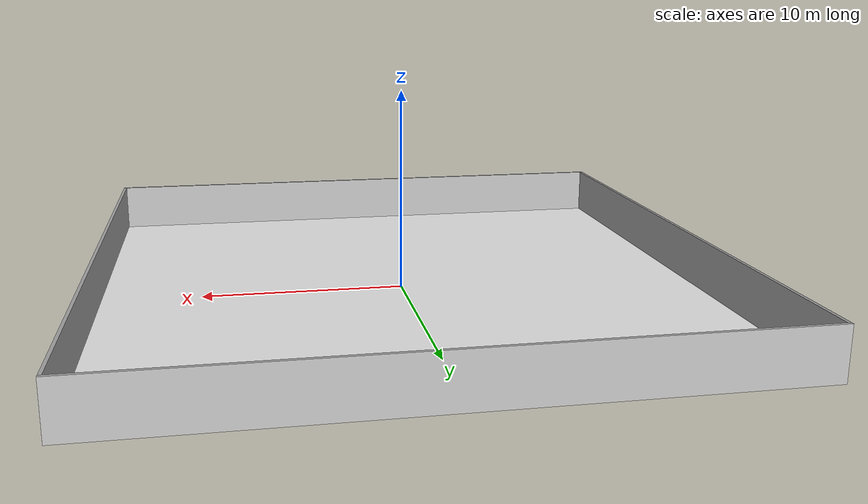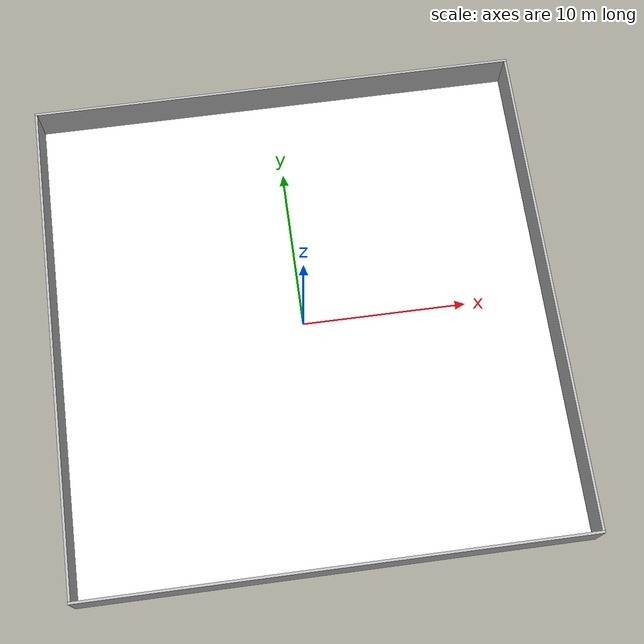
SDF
<?xml version="1.0"?>
<sdf version="1.6">
<model name='warehouse'>
  <static>true</static>
  <pose frame=''>0 0 0 0 -0 0</pose>

    <link name='Wall_1'>
      <collision name='Wall_1_Collision'>
        <geometry>
          <box>
            <size>30 .15239 2.5</size>
          </box>
        </geometry>
        <pose frame=''>0 0 1.25 0 -0 0</pose>
      </collision>
      <visual name='Wall_1_Visual'>
        <pose frame=''>0 0 1.25 0 -0 0</pose>
        <geometry>
          <box>
            <size>30 .15239 2.5</size>
          </box>
        </geometry>
        <material>
          <script>
            <uri>model://warehouse/materials/scripts</uri>
            <uri>model://warehouse/materials/textures</uri>
            <name>RepeatedTexture</name>
          </script>
        </material>
      </visual>
      <pose frame=''>0 15.06 0 0 -0 0</pose>
    </link>

    <link name='Wall_2'>
      <collision name='Wall_2_Collision'>
        <geometry>
          <box>
            <size>30 .15239 2.5</size>
          </box>
        </geometry>
        <pose frame=''>0 0 1.25 0 -0 0</pose>
      </collision>
      <visual name='Wall_2_Visual'>
        <pose frame=''>0 0 1.25 0 -0 0</pose>
        <geometry>
          <box>
            <size>30 .15239 2.5</size>
          </box>
        </geometry>
        <material>
          <script>
            <uri>model://warehouse/materials/scripts</uri>
            <uri>model://warehouse/materials/textures</uri>
            <name>RepeatedTexture</name>
          </script>
        </material>
      </visual>
      <pose frame=''>-14.92 0 0 0 -0 1.57079632679</pose>
    </link>

    <link name='Wall_3'>
      <collision name='Wall_3_Collision'>
        <geometry>
          <box>
            <size>30 .15239 2.5</size>
          </box>
        </geometry>
        <pose frame=''>0 0 1.25 0 -0 0</pose>
      </collision>
      <visual name='Wall_3_Visual'>
        <pose frame=''>0 0 1.25 0 -0 0</pose>
        <geometry>
          <box>
            <size>30 .15239 2.5</size>
          </box>
        </geometry>
        <material>
          <script>
            <uri>model://warehouse/materials/scripts</uri>
            <uri>model://warehouse/materials/textures</uri>
            <name>RepeatedTexture</name>
          </script>
        </material>
      </visual>
      <pose frame=''>0 -15.08 0 0 -0 0</pose>
    </link>

    <link name='Wall_4'>
      <collision name='Wall_4_Collision'>
        <geometry>
          <box>
            <size>30 .15239 2.5</size>
          </box>
        </geometry>
        <pose frame=''>0 0 1.25 0 -0 0</pose>
      </collision>
      <visual name='Wall_4_Visual'>
        <pose frame=''>0 0 1.25 0 -0 0</pose>
        <geometry>
          <box>
            <size>30 .15239 2.5</size>
          </box>
        </geometry>
        <material>
          <script>
            <uri>model://warehouse/materials/scripts</uri>
            <uri>model://warehouse/materials/textures</uri>
            <name>RepeatedTexture</name>
          </script>
        </material>
      </visual>
      <pose frame=''>14.92 0 0 0 -0 1.57079632679</pose>
    </link>

  <link name='Floor'>
    <collision name='Floor_Collision'>
      <geometry>
        <box>
          <size>30 30 .005</size>
        </box>
      </geometry>
      <pose frame=''>0 0 1.25 0 -0 0</pose>
    </collision>
    <visual name='Floor_Visual'>
      <pose frame=''>0 0 1.25 0 -0 0</pose>
      <geometry>
        <box>
          <size>30 30 .005</size>
        </box>
      </geometry>
      <material>
        <script>
          <uri>model://warehouse/materials/scripts</uri>
          <uri>model://warehouse/materials/textures</uri>
          <name>RepeatedFloor</name>
        </script>
        <ambient>1 1 1 1</ambient>
      </material>
      <meta>
        <layer>0</layer>
      </meta>
    </visual>
    <pose frame=''>0 0 -1.25 0 -0 0</pose>
  </link>

</model>
</sdf>
